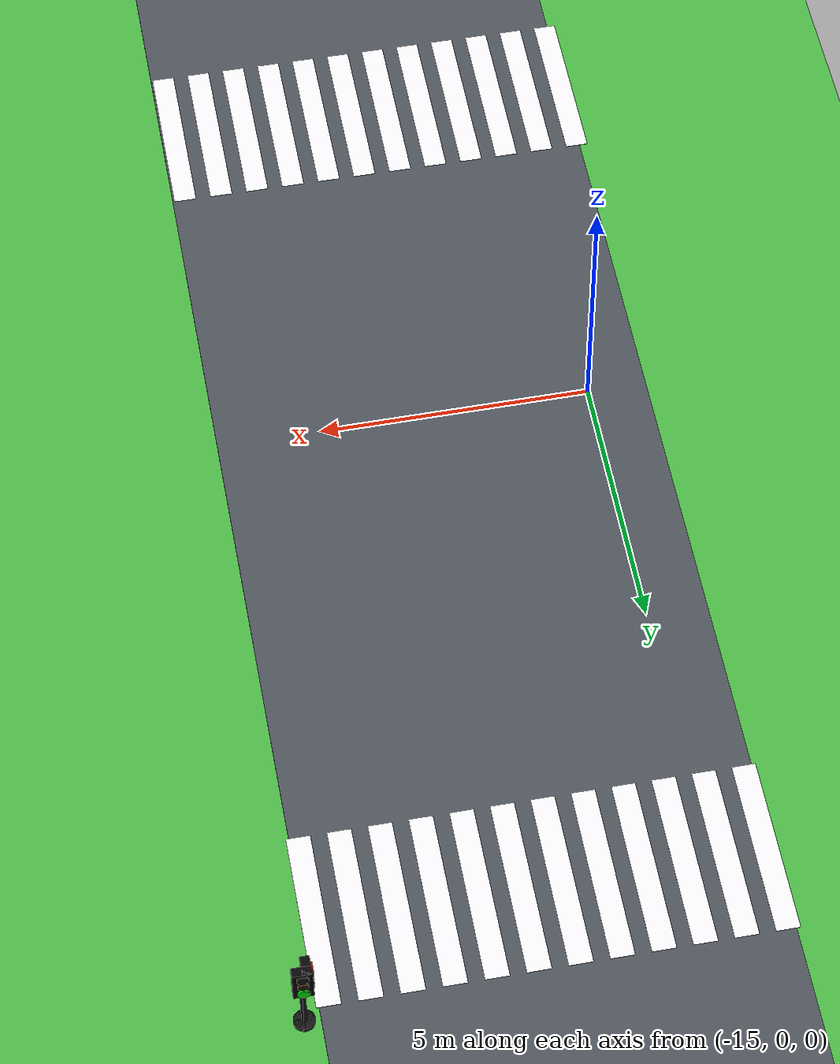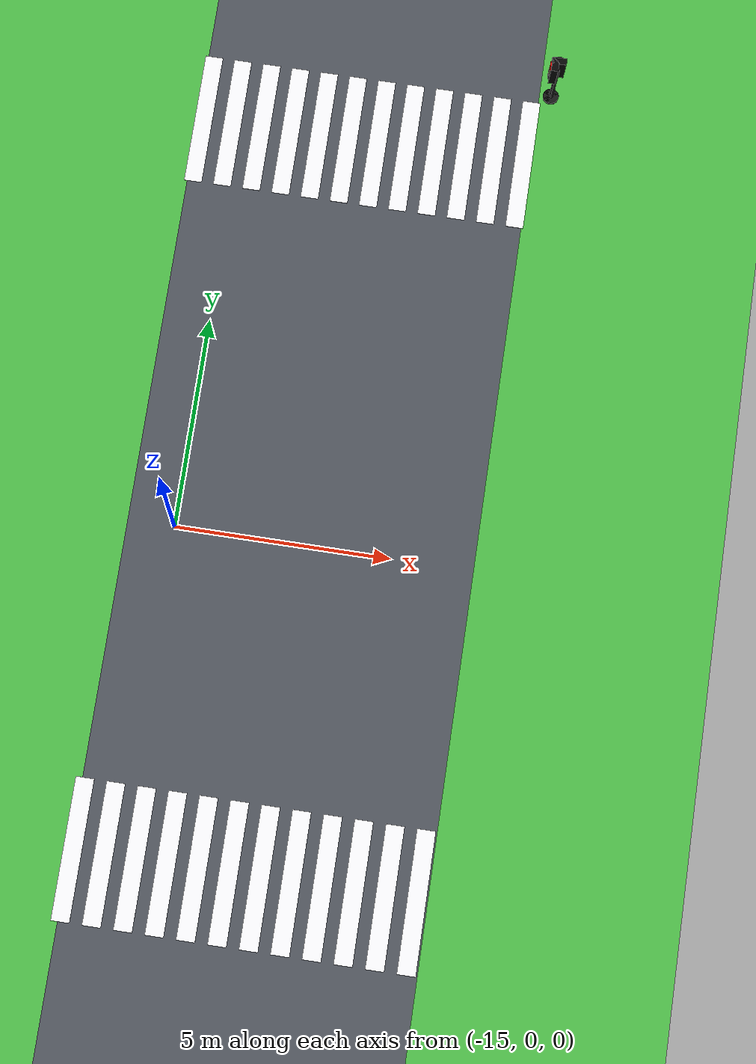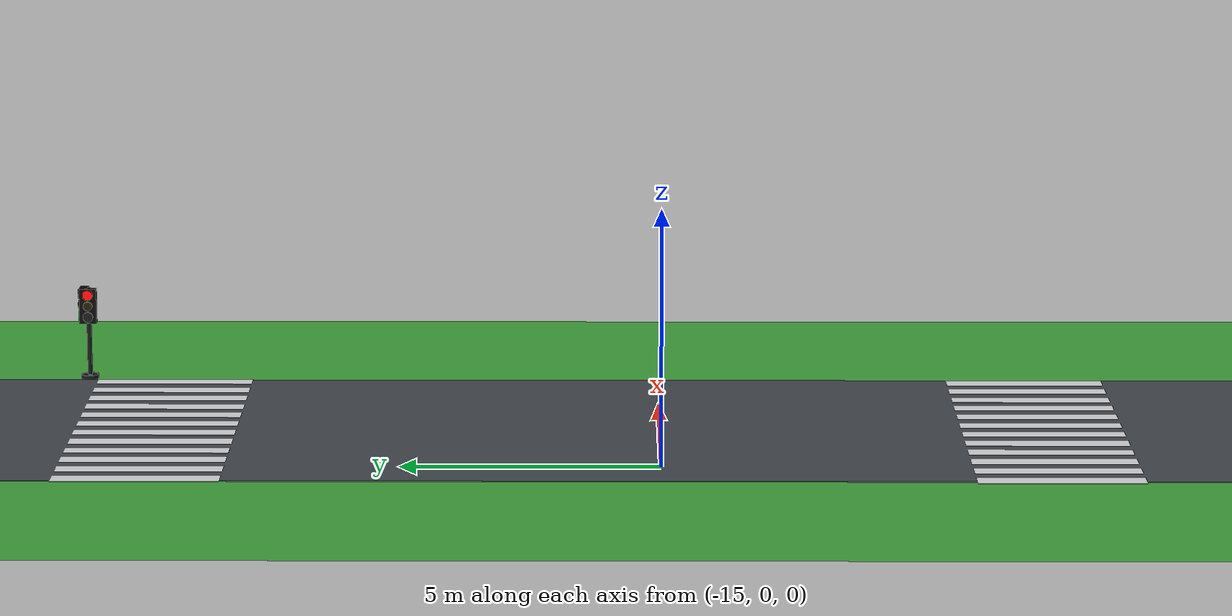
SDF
<sdf version="1.10">
 <world name="city_second">
  <model name="ground_plane">
   <static>true</static>
   <link name="link">
    <collision name="collision">
     <geometry><plane><normal>0 0 1</normal><size>300 300</size></plane></geometry>
    </collision>
    <visual name="visual">
     <geometry><plane><normal>0 0 1</normal><size>300 300</size></plane></geometry>
     <material>
      <ambient>0.280000001 0.689999998 0.25999999 1</ambient>
      <diffuse>0.280000001 0.689999998 0.25999999 1</diffuse>
      <specular>0.0299999993 0.0299999993 0.0299999993 1</specular>
     </material>
    </visual>
    <inertial>
     <mass>1</mass>
     <inertia><ixx>1</ixx><ixy>0</ixy><ixz>0</ixz><iyy>1</iyy><iyz>0</iyz><izz>1</izz></inertia>
    </inertial>
   </link>
  </model>
  <model name="road_v_2_1">
   <static>true</static>
   <pose>-12.095599999999999 -0.169792 0.01 0 0 0</pose>
   <link name="link">
    <collision name="collision"><geometry><box><size>8 84 0.02</size></box></geometry></collision>
    <visual name="visual">
     <geometry><box><size>8 84 0.02</size></box></geometry>
     <material>
      <ambient>0.289999992 0.310000002 0.340000004 1</ambient>
      <diffuse>0.289999992 0.310000002 0.340000004 1</diffuse>
      <specular>0.0299999993 0.0299999993 0.0299999993 1</specular>
     </material>
    </visual>
    <inertial>
     <mass>1</mass>
     <inertia><ixx>1</ixx><ixy>0</ixy><ixz>0</ixz><iyy>1</iyy><iyz>0</iyz><izz>1</izz></inertia>
    </inertial>
   </link>
  </model>
  <model name="crosswalk_h_1_1_south_7_4">
   <static>true</static>
   <pose>-12.188700000000001 -7.5394199999999998 0.017000000000000001 0 0 0</pose>
   <link name="stripe_1">
    <collision name="collision">
     <geometry><box><size>0.41999999999999998 3.2000000000000002 0.01</size></box></geometry>
    </collision>
    <visual name="visual">
     <geometry><box><size>0.41999999999999998 3.2000000000000002 0.01</size></box></geometry>
     <material>
      <ambient>0.920000017 0.920000017 0.930000007 1</ambient>
      <diffuse>0.920000017 0.920000017 0.930000007 1</diffuse>
      <specular>0.0299999993 0.0299999993 0.0299999993 1</specular>
     </material>
    </visual>
    <pose>-3.8500000000000001 0 0 0 0 0</pose>
    <inertial>
     <mass>1</mass>
     <inertia><ixx>1</ixx><ixy>0</ixy><ixz>0</ixz><iyy>1</iyy><iyz>0</iyz><izz>1</izz></inertia>
    </inertial>
   </link>
   <link name="stripe_2">
    <collision name="collision">
     <geometry><box><size>0.41999999999999998 3.2000000000000002 0.01</size></box></geometry>
    </collision>
    <visual name="visual">
     <geometry><box><size>0.41999999999999998 3.2000000000000002 0.01</size></box></geometry>
     <material>
      <ambient>0.920000017 0.920000017 0.930000007 1</ambient>
      <diffuse>0.920000017 0.920000017 0.930000007 1</diffuse>
      <specular>0.0299999993 0.0299999993 0.0299999993 1</specular>
     </material>
    </visual>
    <pose>-3.1499999999999999 0 0 0 0 0</pose>
    <inertial>
     <mass>1</mass>
     <inertia><ixx>1</ixx><ixy>0</ixy><ixz>0</ixz><iyy>1</iyy><iyz>0</iyz><izz>1</izz></inertia>
    </inertial>
   </link>
   <link name="stripe_3">
    <collision name="collision">
     <geometry><box><size>0.41999999999999998 3.2000000000000002 0.01</size></box></geometry>
    </collision>
    <visual name="visual">
     <geometry><box><size>0.41999999999999998 3.2000000000000002 0.01</size></box></geometry>
     <material>
      <ambient>0.920000017 0.920000017 0.930000007 1</ambient>
      <diffuse>0.920000017 0.920000017 0.930000007 1</diffuse>
      <specular>0.0299999993 0.0299999993 0.0299999993 1</specular>
     </material>
    </visual>
    <pose>-2.4500000000000002 0 0 0 0 0</pose>
    <inertial>
     <mass>1</mass>
     <inertia><ixx>1</ixx><ixy>0</ixy><ixz>0</ixz><iyy>1</iyy><iyz>0</iyz><izz>1</izz></inertia>
    </inertial>
   </link>
   <link name="stripe_4">
    <collision name="collision">
     <geometry><box><size>0.41999999999999998 3.2000000000000002 0.01</size></box></geometry>
    </collision>
    <visual name="visual">
     <geometry><box><size>0.41999999999999998 3.2000000000000002 0.01</size></box></geometry>
     <material>
      <ambient>0.920000017 0.920000017 0.930000007 1</ambient>
      <diffuse>0.920000017 0.920000017 0.930000007 1</diffuse>
      <specular>0.0299999993 0.0299999993 0.0299999993 1</specular>
     </material>
    </visual>
    <pose>-1.75 0 0 0 0 0</pose>
    <inertial>
     <mass>1</mass>
     <inertia><ixx>1</ixx><ixy>0</ixy><ixz>0</ixz><iyy>1</iyy><iyz>0</iyz><izz>1</izz></inertia>
    </inertial>
   </link>
   <link name="stripe_5">
    <collision name="collision">
     <geometry><box><size>0.41999999999999998 3.2000000000000002 0.01</size></box></geometry>
    </collision>
    <visual name="visual">
     <geometry><box><size>0.41999999999999998 3.2000000000000002 0.01</size></box></geometry>
     <material>
      <ambient>0.920000017 0.920000017 0.930000007 1</ambient>
      <diffuse>0.920000017 0.920000017 0.930000007 1</diffuse>
      <specular>0.0299999993 0.0299999993 0.0299999993 1</specular>
     </material>
    </visual>
    <pose>-1.05 0 0 0 0 0</pose>
    <inertial>
     <mass>1</mass>
     <inertia><ixx>1</ixx><ixy>0</ixy><ixz>0</ixz><iyy>1</iyy><iyz>0</iyz><izz>1</izz></inertia>
    </inertial>
   </link>
   <link name="stripe_6">
    <collision name="collision">
     <geometry><box><size>0.41999999999999998 3.2000000000000002 0.01</size></box></geometry>
    </collision>
    <visual name="visual">
     <geometry><box><size>0.41999999999999998 3.2000000000000002 0.01</size></box></geometry>
     <material>
      <ambient>0.920000017 0.920000017 0.930000007 1</ambient>
      <diffuse>0.920000017 0.920000017 0.930000007 1</diffuse>
      <specular>0.0299999993 0.0299999993 0.0299999993 1</specular>
     </material>
    </visual>
    <pose>-0.34999999999999998 0 0 0 0 0</pose>
    <inertial>
     <mass>1</mass>
     <inertia><ixx>1</ixx><ixy>0</ixy><ixz>0</ixz><iyy>1</iyy><iyz>0</iyz><izz>1</izz></inertia>
    </inertial>
   </link>
   <link name="stripe_7">
    <collision name="collision">
     <geometry><box><size>0.41999999999999998 3.2000000000000002 0.01</size></box></geometry>
    </collision>
    <visual name="visual">
     <geometry><box><size>0.41999999999999998 3.2000000000000002 0.01</size></box></geometry>
     <material>
      <ambient>0.920000017 0.920000017 0.930000007 1</ambient>
      <diffuse>0.920000017 0.920000017 0.930000007 1</diffuse>
      <specular>0.0299999993 0.0299999993 0.0299999993 1</specular>
     </material>
    </visual>
    <pose>0.34999999999999998 0 0 0 0 0</pose>
    <inertial>
     <mass>1</mass>
     <inertia><ixx>1</ixx><ixy>0</ixy><ixz>0</ixz><iyy>1</iyy><iyz>0</iyz><izz>1</izz></inertia>
    </inertial>
   </link>
   <link name="stripe_8">
    <collision name="collision">
     <geometry><box><size>0.41999999999999998 3.2000000000000002 0.01</size></box></geometry>
    </collision>
    <visual name="visual">
     <geometry><box><size>0.41999999999999998 3.2000000000000002 0.01</size></box></geometry>
     <material>
      <ambient>0.920000017 0.920000017 0.930000007 1</ambient>
      <diffuse>0.920000017 0.920000017 0.930000007 1</diffuse>
      <specular>0.0299999993 0.0299999993 0.0299999993 1</specular>
     </material>
    </visual>
    <pose>1.05 0 0 0 0 0</pose>
    <inertial>
     <mass>1</mass>
     <inertia><ixx>1</ixx><ixy>0</ixy><ixz>0</ixz><iyy>1</iyy><iyz>0</iyz><izz>1</izz></inertia>
    </inertial>
   </link>
   <link name="stripe_9">
    <collision name="collision">
     <geometry><box><size>0.41999999999999998 3.2000000000000002 0.01</size></box></geometry>
    </collision>
    <visual name="visual">
     <geometry><box><size>0.41999999999999998 3.2000000000000002 0.01</size></box></geometry>
     <material>
      <ambient>0.920000017 0.920000017 0.930000007 1</ambient>
      <diffuse>0.920000017 0.920000017 0.930000007 1</diffuse>
      <specular>0.0299999993 0.0299999993 0.0299999993 1</specular>
     </material>
    </visual>
    <pose>1.75 0 0 0 0 0</pose>
    <inertial>
     <mass>1</mass>
     <inertia><ixx>1</ixx><ixy>0</ixy><ixz>0</ixz><iyy>1</iyy><iyz>0</iyz><izz>1</izz></inertia>
    </inertial>
   </link>
   <link name="stripe_10">
    <collision name="collision">
     <geometry><box><size>0.41999999999999998 3.2000000000000002 0.01</size></box></geometry>
    </collision>
    <visual name="visual">
     <geometry><box><size>0.41999999999999998 3.2000000000000002 0.01</size></box></geometry>
     <material>
      <ambient>0.920000017 0.920000017 0.930000007 1</ambient>
      <diffuse>0.920000017 0.920000017 0.930000007 1</diffuse>
      <specular>0.0299999993 0.0299999993 0.0299999993 1</specular>
     </material>
    </visual>
    <pose>2.4500000000000002 0 0 0 0 0</pose>
    <inertial>
     <mass>1</mass>
     <inertia><ixx>1</ixx><ixy>0</ixy><ixz>0</ixz><iyy>1</iyy><iyz>0</iyz><izz>1</izz></inertia>
    </inertial>
   </link>
   <link name="stripe_11">
    <collision name="collision">
     <geometry><box><size>0.41999999999999998 3.2000000000000002 0.01</size></box></geometry>
    </collision>
    <visual name="visual">
     <geometry><box><size>0.41999999999999998 3.2000000000000002 0.01</size></box></geometry>
     <material>
      <ambient>0.920000017 0.920000017 0.930000007 1</ambient>
      <diffuse>0.920000017 0.920000017 0.930000007 1</diffuse>
      <specular>0.0299999993 0.0299999993 0.0299999993 1</specular>
     </material>
    </visual>
    <pose>3.1499999999999999 0 0 0 0 0</pose>
    <inertial>
     <mass>1</mass>
     <inertia><ixx>1</ixx><ixy>0</ixy><ixz>0</ixz><iyy>1</iyy><iyz>0</iyz><izz>1</izz></inertia>
    </inertial>
   </link>
   <link name="stripe_12">
    <collision name="collision">
     <geometry><box><size>0.41999999999999998 3.2000000000000002 0.01</size></box></geometry>
    </collision>
    <visual name="visual">
     <geometry><box><size>0.41999999999999998 3.2000000000000002 0.01</size></box></geometry>
     <material>
      <ambient>0.920000017 0.920000017 0.930000007 1</ambient>
      <diffuse>0.920000017 0.920000017 0.930000007 1</diffuse>
      <specular>0.0299999993 0.0299999993 0.0299999993 1</specular>
     </material>
    </visual>
    <pose>3.8500000000000001 0 0 0 0 0</pose>
    <inertial>
     <mass>1</mass>
     <inertia><ixx>1</ixx><ixy>0</ixy><ixz>0</ixz><iyy>1</iyy><iyz>0</iyz><izz>1</izz></inertia>
    </inertial>
   </link>
  </model>
  <model name="crosswalk_h_1_1_south_7_5">
   <static>true</static>
   <pose>-12.1074 9.9455399999999994 0.017000000000000001 0 0 0</pose>
   <link name="stripe_1">
    <collision name="collision">
     <geometry><box><size>0.41999999999999998 3.2000000000000002 0.01</size></box></geometry>
    </collision>
    <visual name="visual">
     <geometry><box><size>0.41999999999999998 3.2000000000000002 0.01</size></box></geometry>
     <material>
      <ambient>0.920000017 0.920000017 0.930000007 1</ambient>
      <diffuse>0.920000017 0.920000017 0.930000007 1</diffuse>
      <specular>0.0299999993 0.0299999993 0.0299999993 1</specular>
     </material>
    </visual>
    <pose>-3.8500000000000001 0 0 0 0 0</pose>
    <inertial>
     <mass>1</mass>
     <inertia><ixx>1</ixx><ixy>0</ixy><ixz>0</ixz><iyy>1</iyy><iyz>0</iyz><izz>1</izz></inertia>
    </inertial>
   </link>
   <link name="stripe_2">
    <collision name="collision">
     <geometry><box><size>0.41999999999999998 3.2000000000000002 0.01</size></box></geometry>
    </collision>
    <visual name="visual">
     <geometry><box><size>0.41999999999999998 3.2000000000000002 0.01</size></box></geometry>
     <material>
      <ambient>0.920000017 0.920000017 0.930000007 1</ambient>
      <diffuse>0.920000017 0.920000017 0.930000007 1</diffuse>
      <specular>0.0299999993 0.0299999993 0.0299999993 1</specular>
     </material>
    </visual>
    <pose>-3.1499999999999999 0 0 0 0 0</pose>
    <inertial>
     <mass>1</mass>
     <inertia><ixx>1</ixx><ixy>0</ixy><ixz>0</ixz><iyy>1</iyy><iyz>0</iyz><izz>1</izz></inertia>
    </inertial>
   </link>
   <link name="stripe_3">
    <collision name="collision">
     <geometry><box><size>0.41999999999999998 3.2000000000000002 0.01</size></box></geometry>
    </collision>
    <visual name="visual">
     <geometry><box><size>0.41999999999999998 3.2000000000000002 0.01</size></box></geometry>
     <material>
      <ambient>0.920000017 0.920000017 0.930000007 1</ambient>
      <diffuse>0.920000017 0.920000017 0.930000007 1</diffuse>
      <specular>0.0299999993 0.0299999993 0.0299999993 1</specular>
     </material>
    </visual>
    <pose>-2.4500000000000002 0 0 0 0 0</pose>
    <inertial>
     <mass>1</mass>
     <inertia><ixx>1</ixx><ixy>0</ixy><ixz>0</ixz><iyy>1</iyy><iyz>0</iyz><izz>1</izz></inertia>
    </inertial>
   </link>
   <link name="stripe_4">
    <collision name="collision">
     <geometry><box><size>0.41999999999999998 3.2000000000000002 0.01</size></box></geometry>
    </collision>
    <visual name="visual">
     <geometry><box><size>0.41999999999999998 3.2000000000000002 0.01</size></box></geometry>
     <material>
      <ambient>0.920000017 0.920000017 0.930000007 1</ambient>
      <diffuse>0.920000017 0.920000017 0.930000007 1</diffuse>
      <specular>0.0299999993 0.0299999993 0.0299999993 1</specular>
     </material>
    </visual>
    <pose>-1.75 0 0 0 0 0</pose>
    <inertial>
     <mass>1</mass>
     <inertia><ixx>1</ixx><ixy>0</ixy><ixz>0</ixz><iyy>1</iyy><iyz>0</iyz><izz>1</izz></inertia>
    </inertial>
   </link>
   <link name="stripe_5">
    <collision name="collision">
     <geometry><box><size>0.41999999999999998 3.2000000000000002 0.01</size></box></geometry>
    </collision>
    <visual name="visual">
     <geometry><box><size>0.41999999999999998 3.2000000000000002 0.01</size></box></geometry>
     <material>
      <ambient>0.920000017 0.920000017 0.930000007 1</ambient>
      <diffuse>0.920000017 0.920000017 0.930000007 1</diffuse>
      <specular>0.0299999993 0.0299999993 0.0299999993 1</specular>
     </material>
    </visual>
    <pose>-1.05 0 0 0 0 0</pose>
    <inertial>
     <mass>1</mass>
     <inertia><ixx>1</ixx><ixy>0</ixy><ixz>0</ixz><iyy>1</iyy><iyz>0</iyz><izz>1</izz></inertia>
    </inertial>
   </link>
   <link name="stripe_6">
    <collision name="collision">
     <geometry><box><size>0.41999999999999998 3.2000000000000002 0.01</size></box></geometry>
    </collision>
    <visual name="visual">
     <geometry><box><size>0.41999999999999998 3.2000000000000002 0.01</size></box></geometry>
     <material>
      <ambient>0.920000017 0.920000017 0.930000007 1</ambient>
      <diffuse>0.920000017 0.920000017 0.930000007 1</diffuse>
      <specular>0.0299999993 0.0299999993 0.0299999993 1</specular>
     </material>
    </visual>
    <pose>-0.34999999999999998 0 0 0 0 0</pose>
    <inertial>
     <mass>1</mass>
     <inertia><ixx>1</ixx><ixy>0</ixy><ixz>0</ixz><iyy>1</iyy><iyz>0</iyz><izz>1</izz></inertia>
    </inertial>
   </link>
   <link name="stripe_7">
    <collision name="collision">
     <geometry><box><size>0.41999999999999998 3.2000000000000002 0.01</size></box></geometry>
    </collision>
    <visual name="visual">
     <geometry><box><size>0.41999999999999998 3.2000000000000002 0.01</size></box></geometry>
     <material>
      <ambient>0.920000017 0.920000017 0.930000007 1</ambient>
      <diffuse>0.920000017 0.920000017 0.930000007 1</diffuse>
      <specular>0.0299999993 0.0299999993 0.0299999993 1</specular>
     </material>
    </visual>
    <pose>0.34999999999999998 0 0 0 0 0</pose>
    <inertial>
     <mass>1</mass>
     <inertia><ixx>1</ixx><ixy>0</ixy><ixz>0</ixz><iyy>1</iyy><iyz>0</iyz><izz>1</izz></inertia>
    </inertial>
   </link>
   <link name="stripe_8">
    <collision name="collision">
     <geometry><box><size>0.41999999999999998 3.2000000000000002 0.01</size></box></geometry>
    </collision>
    <visual name="visual">
     <geometry><box><size>0.41999999999999998 3.2000000000000002 0.01</size></box></geometry>
     <material>
      <ambient>0.920000017 0.920000017 0.930000007 1</ambient>
      <diffuse>0.920000017 0.920000017 0.930000007 1</diffuse>
      <specular>0.0299999993 0.0299999993 0.0299999993 1</specular>
     </material>
    </visual>
    <pose>1.05 0 0 0 0 0</pose>
    <inertial>
     <mass>1</mass>
     <inertia><ixx>1</ixx><ixy>0</ixy><ixz>0</ixz><iyy>1</iyy><iyz>0</iyz><izz>1</izz></inertia>
    </inertial>
   </link>
   <link name="stripe_9">
    <collision name="collision">
     <geometry><box><size>0.41999999999999998 3.2000000000000002 0.01</size></box></geometry>
    </collision>
    <visual name="visual">
     <geometry><box><size>0.41999999999999998 3.2000000000000002 0.01</size></box></geometry>
     <material>
      <ambient>0.920000017 0.920000017 0.930000007 1</ambient>
      <diffuse>0.920000017 0.920000017 0.930000007 1</diffuse>
      <specular>0.0299999993 0.0299999993 0.0299999993 1</specular>
     </material>
    </visual>
    <pose>1.75 0 0 0 0 0</pose>
    <inertial>
     <mass>1</mass>
     <inertia><ixx>1</ixx><ixy>0</ixy><ixz>0</ixz><iyy>1</iyy><iyz>0</iyz><izz>1</izz></inertia>
    </inertial>
   </link>
   <link name="stripe_10">
    <collision name="collision">
     <geometry><box><size>0.41999999999999998 3.2000000000000002 0.01</size></box></geometry>
    </collision>
    <visual name="visual">
     <geometry><box><size>0.41999999999999998 3.2000000000000002 0.01</size></box></geometry>
     <material>
      <ambient>0.920000017 0.920000017 0.930000007 1</ambient>
      <diffuse>0.920000017 0.920000017 0.930000007 1</diffuse>
      <specular>0.0299999993 0.0299999993 0.0299999993 1</specular>
     </material>
    </visual>
    <pose>2.4500000000000002 0 0 0 0 0</pose>
    <inertial>
     <mass>1</mass>
     <inertia><ixx>1</ixx><ixy>0</ixy><ixz>0</ixz><iyy>1</iyy><iyz>0</iyz><izz>1</izz></inertia>
    </inertial>
   </link>
   <link name="stripe_11">
    <collision name="collision">
     <geometry><box><size>0.41999999999999998 3.2000000000000002 0.01</size></box></geometry>
    </collision>
    <visual name="visual">
     <geometry><box><size>0.41999999999999998 3.2000000000000002 0.01</size></box></geometry>
     <material>
      <ambient>0.920000017 0.920000017 0.930000007 1</ambient>
      <diffuse>0.920000017 0.920000017 0.930000007 1</diffuse>
      <specular>0.0299999993 0.0299999993 0.0299999993 1</specular>
     </material>
    </visual>
    <pose>3.1499999999999999 0 0 0 0 0</pose>
    <inertial>
     <mass>1</mass>
     <inertia><ixx>1</ixx><ixy>0</ixy><ixz>0</ixz><iyy>1</iyy><iyz>0</iyz><izz>1</izz></inertia>
    </inertial>
   </link>
   <link name="stripe_12">
    <collision name="collision">
     <geometry><box><size>0.41999999999999998 3.2000000000000002 0.01</size></box></geometry>
    </collision>
    <visual name="visual">
     <geometry><box><size>0.41999999999999998 3.2000000000000002 0.01</size></box></geometry>
     <material>
      <ambient>0.920000017 0.920000017 0.930000007 1</ambient>
      <diffuse>0.920000017 0.920000017 0.930000007 1</diffuse>
      <specular>0.0299999993 0.0299999993 0.0299999993 1</specular>
     </material>
    </visual>
    <pose>3.8500000000000001 0 0 0 0 0</pose>
    <inertial>
     <mass>1</mass>
     <inertia><ixx>1</ixx><ixy>0</ixy><ixz>0</ixz><iyy>1</iyy><iyz>0</iyz><izz>1</izz></inertia>
    </inertial>
   </link>
  </model>
  <model name="simple_traffic_light_green_north_1_2_1">
   <static>true</static>
   <pose>-7.828921965272885 11.742283597762533 0 0 0 0</pose>
   <link name="base">
    <pose>0 0 0.040000000000000001 0 0 0</pose>
    <collision name="collision">
     <geometry>
      <cylinder><radius>0.17999999999999999</radius><length>0.080000000000000002</length></cylinder>
     </geometry>
    </collision>
    <visual name="visual">
     <geometry>
      <cylinder><radius>0.17999999999999999</radius><length>0.080000000000000002</length></cylinder>
     </geometry>
     <material>
      <ambient>0.0799999982 0.0799999982 0.0799999982 1</ambient>
      <diffuse>0.0799999982 0.0799999982 0.0799999982 1</diffuse>
      <specular>0.150000006 0.150000006 0.150000006 1</specular>
      <emissive>0 0 0 1</emissive>
     </material>
    </visual>
   </link>
   <link name="pole">
    <pose>0 0 0.80000000000000004 0 0 0</pose>
    <collision name="collision">
     <geometry>
      <cylinder><radius>0.044999999999999998</radius><length>1.6000000000000001</length></cylinder>
     </geometry>
    </collision>
    <visual name="visual">
     <geometry>
      <cylinder><radius>0.044999999999999998</radius><length>1.6000000000000001</length></cylinder>
     </geometry>
     <material>
      <ambient>0.0799999982 0.0799999982 0.0799999982 1</ambient>
      <diffuse>0.0799999982 0.0799999982 0.0799999982 1</diffuse>
      <specular>0.150000006 0.150000006 0.150000006 1</specular>
      <emissive>0 0 0 1</emissive>
     </material>
    </visual>
   </link>
   <link name="signal_box">
    <pose>0 0.089999999999999997 1.55 0 0 0</pose>
    <collision name="collision">
     <geometry><box><size>0.34000000000000002 0.16 0.71999999999999997</size></box></geometry>
    </collision>
    <visual name="visual">
     <geometry><box><size>0.34000000000000002 0.16 0.71999999999999997</size></box></geometry>
     <material>
      <ambient>0.0199999996 0.0199999996 0.0199999996 1</ambient>
      <diffuse>0.0199999996 0.0199999996 0.0199999996 1</diffuse>
      <specular>0.150000006 0.150000006 0.150000006 1</specular>
      <emissive>0 0 0 1</emissive>
     </material>
    </visual>
   </link>
   <link name="red_lens">
    <pose>0 0.18099999999999999 1.78 1.5707963268 0 0</pose>
    <collision name="collision">
     <geometry><cylinder><radius>0.105</radius><length>0.035000000000000003</length></cylinder></geometry>
    </collision>
    <visual name="visual">
     <geometry><cylinder><radius>0.105</radius><length>0.035000000000000003</length></cylinder></geometry>
     <material>
      <ambient>0.0799999982 0.0799999982 0.0799999982 1</ambient>
      <diffuse>0.0799999982 0.0799999982 0.0799999982 1</diffuse>
      <specular>0.150000006 0.150000006 0.150000006 1</specular>
      <emissive>0 0 0 1</emissive>
     </material>
    </visual>
   </link>
   <link name="yellow_lens">
    <pose>0 0.182 1.55 1.5707963268 0 0</pose>
    <collision name="collision">
     <geometry>
      <cylinder><radius>0.095000000000000001</radius><length>0.035000000000000003</length></cylinder>
     </geometry>
    </collision>
    <visual name="visual">
     <geometry>
      <cylinder><radius>0.095000000000000001</radius><length>0.035000000000000003</length></cylinder>
     </geometry>
     <material>
      <ambient>0.119999997 0.100000001 0.0199999996 1</ambient>
      <diffuse>0.119999997 0.100000001 0.0199999996 1</diffuse>
      <specular>0.150000006 0.150000006 0.150000006 1</specular>
      <emissive>0 0 0 1</emissive>
     </material>
    </visual>
   </link>
   <link name="green_lens">
    <pose>0 0.183 1.3200000000000001 1.5707963268 0 0</pose>
    <collision name="collision">
     <geometry><cylinder><radius>0.105</radius><length>0.035000000000000003</length></cylinder></geometry>
    </collision>
    <visual name="visual">
     <geometry><cylinder><radius>0.105</radius><length>0.035000000000000003</length></cylinder></geometry>
     <material>
      <ambient>0.0199999996 1 0.0199999996 1</ambient>
      <diffuse>0.0199999996 1 0.0199999996 1</diffuse>
      <specular>0.150000006 0.150000006 0.150000006 1</specular>
      <emissive>0.0199999996 1 0.0199999996 1</emissive>
     </material>
    </visual>
   </link>
   <light name="green_glow" type="point">
    <pose>0 0.28 1.32 0 0 0</pose>
    <diffuse>0.02 1 0.02 1</diffuse>
    <specular>0.02 1 0.02 1</specular>
    <attenuation>
     <range>3.0</range>
     <constant>0.8</constant>
     <linear>0.15</linear>
     <quadratic>0.02</quadratic>
    </attenuation>
    <cast_shadows>false</cast_shadows>
   </light>
  </model>
  <model name="simple_traffic_light_red_west_2_2">
   <static>true</static>
   <pose>-7.8200928472660758 11.73966045355432 -1.3877787807814457e-17 0 0 1.5707999672671704</pose>
   <link name="base">
    <pose>0 0 0.040000000000000001 0 0 0</pose>
    <collision name="collision">
     <geometry>
      <cylinder><radius>0.17999999999999999</radius><length>0.080000000000000002</length></cylinder>
     </geometry>
    </collision>
    <visual name="visual">
     <geometry>
      <cylinder><radius>0.17999999999999999</radius><length>0.080000000000000002</length></cylinder>
     </geometry>
     <material>
      <ambient>0.0799999982 0.0799999982 0.0799999982 1</ambient>
      <diffuse>0.0799999982 0.0799999982 0.0799999982 1</diffuse>
      <specular>0.150000006 0.150000006 0.150000006 1</specular>
      <emissive>0 0 0 1</emissive>
     </material>
    </visual>
    <inertial>
     <mass>1</mass>
     <inertia><ixx>1</ixx><ixy>0</ixy><ixz>0</ixz><iyy>1</iyy><iyz>0</iyz><izz>1</izz></inertia>
    </inertial>
   </link>
   <link name="pole">
    <pose>0 0 0.80000000000000004 0 0 0</pose>
    <collision name="collision">
     <geometry>
      <cylinder><radius>0.044999999999999998</radius><length>1.6000000000000001</length></cylinder>
     </geometry>
    </collision>
    <visual name="visual">
     <geometry>
      <cylinder><radius>0.044999999999999998</radius><length>1.6000000000000001</length></cylinder>
     </geometry>
     <material>
      <ambient>0.0799999982 0.0799999982 0.0799999982 1</ambient>
      <diffuse>0.0799999982 0.0799999982 0.0799999982 1</diffuse>
      <specular>0.150000006 0.150000006 0.150000006 1</specular>
      <emissive>0 0 0 1</emissive>
     </material>
    </visual>
    <inertial>
     <mass>1</mass>
     <inertia><ixx>1</ixx><ixy>0</ixy><ixz>0</ixz><iyy>1</iyy><iyz>0</iyz><izz>1</izz></inertia>
    </inertial>
   </link>
   <link name="signal_box">
    <pose>-7.1054273576010019e-15 0.090000000000003411 1.5500000000000003 0 0 0</pose>
    <collision name="collision">
     <geometry><box><size>0.34000000000000002 0.16 0.71999999999999997</size></box></geometry>
    </collision>
    <visual name="visual">
     <geometry><box><size>0.34000000000000002 0.16 0.71999999999999997</size></box></geometry>
     <material>
      <ambient>0.0199999996 0.0199999996 0.0199999996 1</ambient>
      <diffuse>0.0199999996 0.0199999996 0.0199999996 1</diffuse>
      <specular>0.150000006 0.150000006 0.150000006 1</specular>
      <emissive>0 0 0 1</emissive>
     </material>
    </visual>
    <inertial>
     <mass>1</mass>
     <inertia><ixx>1</ixx><ixy>0</ixy><ixz>0</ixz><iyy>1</iyy><iyz>0</iyz><izz>1</izz></inertia>
    </inertial>
   </link>
   <link name="red_lens">
    <pose>0 0.18100000000000449 1.78 1.5707963267999998 8.0126081257495458e-28 -3.1401849173675498e-16</pose>
    <collision name="collision">
     <geometry><cylinder><radius>0.105</radius><length>0.035000000000000003</length></cylinder></geometry>
    </collision>
    <visual name="visual">
     <geometry><cylinder><radius>0.105</radius><length>0.035000000000000003</length></cylinder></geometry>
     <material>
      <ambient>1 0.0199999996 0.0199999996 1</ambient>
      <diffuse>1 0.0199999996 0.0199999996 1</diffuse>
      <specular>0.150000006 0.150000006 0.150000006 1</specular>
      <emissive>1 0.0199999996 0.0199999996 1</emissive>
     </material>
    </visual>
    <inertial>
     <mass>1</mass>
     <inertia><ixx>1</ixx><ixy>0</ixy><ixz>0</ixz><iyy>1</iyy><iyz>0</iyz><izz>1</izz></inertia>
    </inertial>
   </link>
   <link name="yellow_lens">
    <pose>-7.1054273576010019e-15 0.18200000000000216 1.5500000000000003 1.5707963267999998 8.0126081257495458e-28 -3.1401849173675498e-16</pose>
    <collision name="collision">
     <geometry>
      <cylinder><radius>0.095000000000000001</radius><length>0.035000000000000003</length></cylinder>
     </geometry>
    </collision>
    <visual name="visual">
     <geometry>
      <cylinder><radius>0.095000000000000001</radius><length>0.035000000000000003</length></cylinder>
     </geometry>
     <material>
      <ambient>0.119999997 0.100000001 0.0199999996 1</ambient>
      <diffuse>0.119999997 0.100000001 0.0199999996 1</diffuse>
      <specular>0.150000006 0.150000006 0.150000006 1</specular>
      <emissive>0 0 0 1</emissive>
     </material>
    </visual>
    <inertial>
     <mass>1</mass>
     <inertia><ixx>1</ixx><ixy>0</ixy><ixz>0</ixz><iyy>1</iyy><iyz>0</iyz><izz>1</izz></inertia>
    </inertial>
   </link>
   <link name="green_lens">
    <pose>0 0.18300000000000693 1.3199999999999998 1.5707963267999998 8.0126081257495458e-28 -3.1401849173675498e-16</pose>
    <collision name="collision">
     <geometry><cylinder><radius>0.105</radius><length>0.035000000000000003</length></cylinder></geometry>
    </collision>
    <visual name="visual">
     <geometry><cylinder><radius>0.105</radius><length>0.035000000000000003</length></cylinder></geometry>
     <material>
      <ambient>0.0799999982 0.0799999982 0.0799999982 1</ambient>
      <diffuse>0.0799999982 0.0799999982 0.0799999982 1</diffuse>
      <specular>0.150000006 0.150000006 0.150000006 1</specular>
      <emissive>0 0 0 1</emissive>
     </material>
    </visual>
    <inertial>
     <mass>1</mass>
     <inertia><ixx>1</ixx><ixy>0</ixy><ixz>0</ixz><iyy>1</iyy><iyz>0</iyz><izz>1</izz></inertia>
    </inertial>
   </link>
   <light name="red_glow" type="point">
    <pose>0 0.28 1.78 0 0 0</pose>
    <diffuse>1 0.02 0.02 1</diffuse>
    <specular>1 0.02 0.02 1</specular>
    <attenuation>
     <range>3.0</range>
     <constant>0.8</constant>
     <linear>0.15</linear>
     <quadratic>0.02</quadratic>
    </attenuation>
    <cast_shadows>false</cast_shadows>
   </light>
  </model>
 </world>
</sdf>
